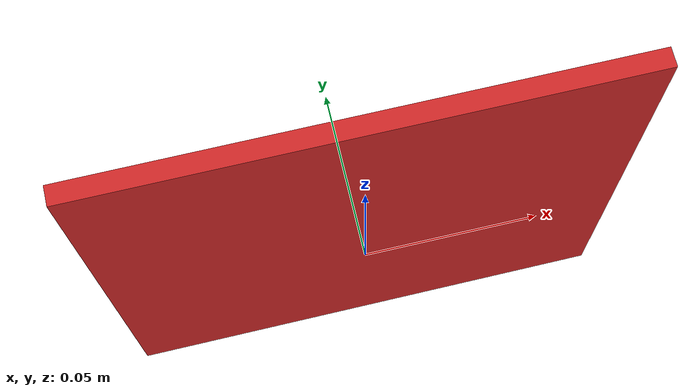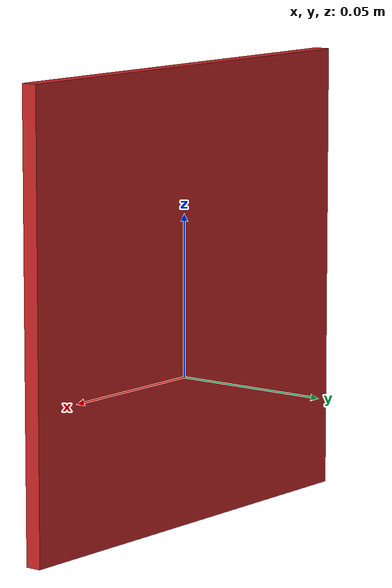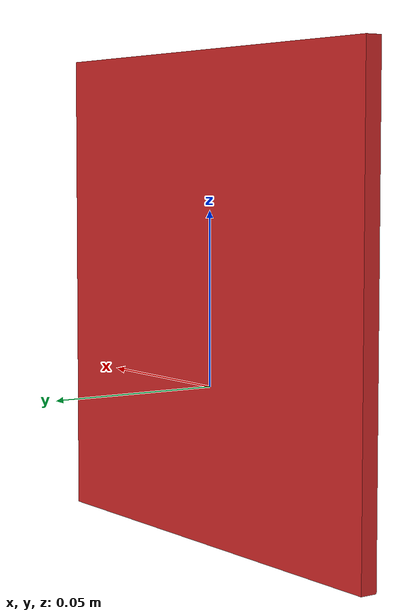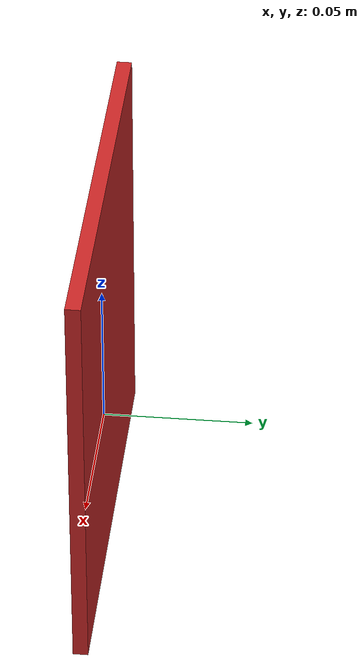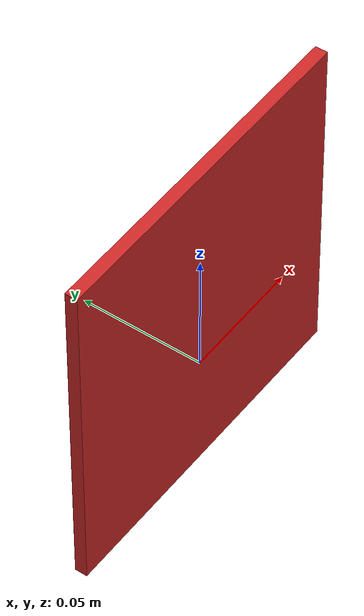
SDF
<?xml version="1.0"?>
<sdf version="1.6">
  <model name="red_on">
    <static>true</static>
    <pose>0 0 0.025 0 0 0</pose>
    <link name="red_on">
      <collision name="collision">
        <geometry>
          <box>
            <size>0.14 0.005 0.14</size>
          </box>
        </geometry>
      </collision>
      <visual name="visual">
        <geometry>
          <box>
            <size>0.14 0.005 0.14</size>
          </box>
        </geometry>
        <material>
          <script>
            <uri>model://red_on/materials/scripts/red_on.material</uri>
            <uri>model://red_on/materials/textures/red_on.png</uri>
            <name>red_on</name>
          </script>
        </material>
      </visual>
    </link>
  </model>
</sdf>
